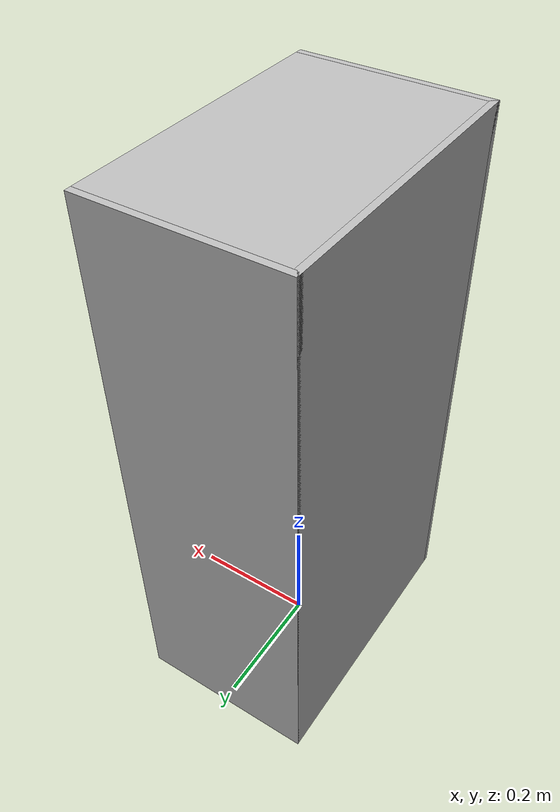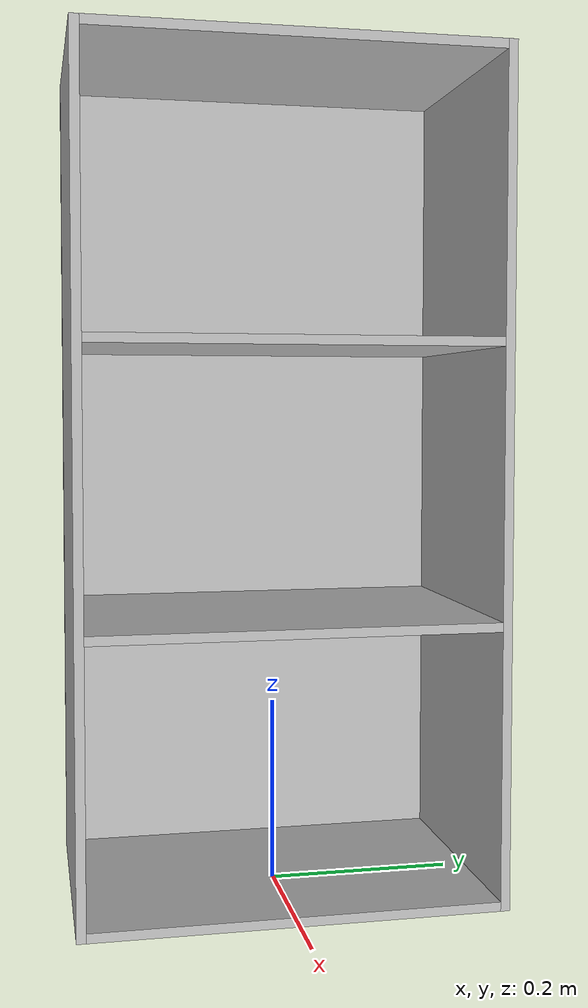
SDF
<?xml version="1.0"?>
<sdf version="1.6">
  <model name="rwc2017/cabinet_simple_no_areas">
    <link name="1_link">
      <collision name="1_col">
        <geometry>
          <box>
            <size>0.29 0.01 0.9</size>
          </box>
        </geometry>
      </collision>
      <visual name="1_vis">
        <geometry>
          <box>
            <size>0.29 0.01 0.9</size>
          </box>
        </geometry>
      </visual>
      <pose>0 -0.22 0.45 0 0 0</pose>
    </link>
    <link name="2_link">
      <collision name="2_col">
        <geometry>
          <box>
            <size>0.29 0.01 0.9</size>
          </box>
        </geometry>
      </collision>
      <visual name="2_vis">
        <geometry>
          <box>
            <size>0.29 0.01 0.9</size>
          </box>
        </geometry>
      </visual>
      <pose>0 0.22 0.45 0 0 0</pose>
    </link>
    <link name="3_link">
      <collision name="3_col">
        <geometry>
          <box>
            <size>0.01 0.45 0.9</size>
          </box>
        </geometry>
      </collision>
      <visual name="3_vis">
        <geometry>
          <box>
            <size>0.01 0.45 0.9</size>
          </box>
        </geometry>
      </visual>
      <pose>-0.14 0 0.45 0 0 0</pose>
    </link>
    <link name="4_link">
      <collision name="4_col">
        <geometry>
          <box>
            <size>0.28 0.43 0.01</size>
          </box>
        </geometry>
      </collision>
      <visual name="4_vis">
        <geometry>
          <box>
            <size>0.28 0.43 0.01</size>
          </box>
        </geometry>
      </visual>
      <pose>0.005 0 0.895 0 0 0</pose>
    </link>
    <link name="5_link">
      <collision name="5_col">
        <geometry>
          <box>
            <size>0.28 0.43 0.01</size>
          </box>
        </geometry>
      </collision>
      <visual name="5_vis">
        <geometry>
          <box>
            <size>0.28 0.43 0.01</size>
          </box>
        </geometry>
      </visual>
      <pose>0.005 0 0.005 0 0 0</pose>
    </link>
    <link name="6_link">
      <collision name="6_col">
        <geometry>
          <box>
            <size>0.28 0.43 0.01</size>
          </box>
        </geometry>
      </collision>
      <visual name="6_vis">
        <geometry>
          <box>
            <size>0.28 0.43 0.01</size>
          </box>
        </geometry>
      </visual>
      <pose>0.005 0 0.3 0 0 0</pose>
    </link>
    <link name="7_link">
      <collision name="7_col">
        <geometry>
          <box>
            <size>0.28 0.43 0.01</size>
          </box>
        </geometry>
      </collision>
      <visual name="7_vis">
        <geometry>
          <box>
            <size>0.28 0.43 0.01</size>
          </box>
        </geometry>
      </visual>
      <pose>0.005 0 0.595 0 0 0</pose>
    </link>
    <static>true</static>
  </model>
</sdf>
